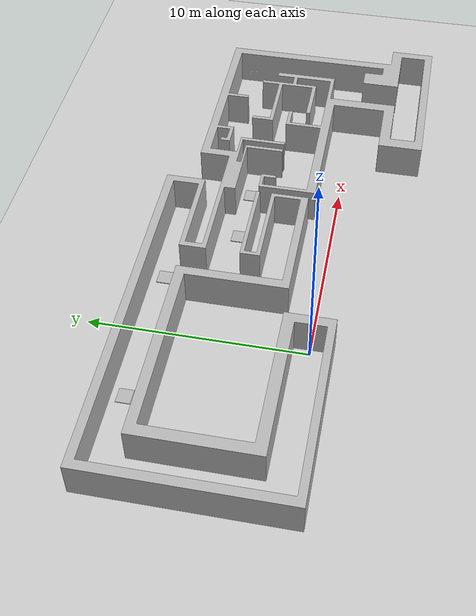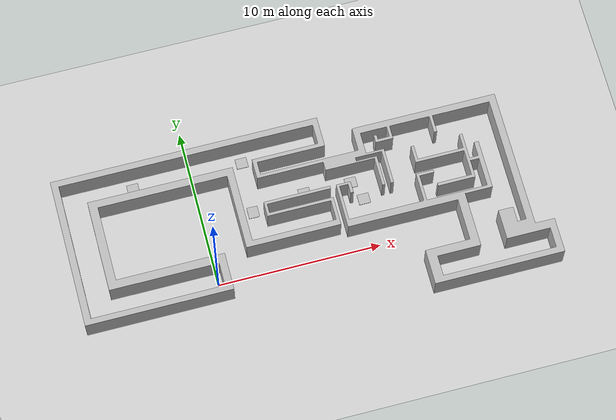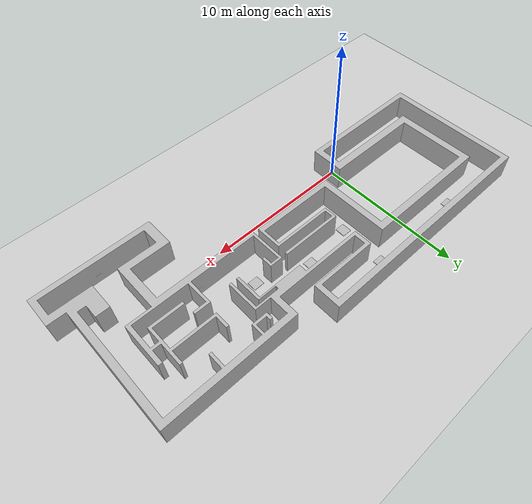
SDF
<sdf version='1.9'>
  <world name='empty'>
    <physics name='1ms' type='ignored'>
      <max_step_size>0.001</max_step_size>
      <real_time_factor>1</real_time_factor>
      <real_time_update_rate>1000</real_time_update_rate>
    </physics>
    <plugin name='gz::sim::systems::Physics' filename='gz-sim-physics-system'/>
    <plugin name='gz::sim::systems::UserCommands' filename='gz-sim-user-commands-system'/>
    <plugin name='gz::sim::systems::SceneBroadcaster' filename='gz-sim-scene-broadcaster-system'/>
    <plugin name='gz::sim::systems::Sensors' filename='gz-sim-sensors-system'>
      <render_engine>ogre2</render_engine>
    </plugin>
    <plugin name='gz::sim::systems::Contact' filename='gz-sim-contact-system'/>
    <plugin name='gz::sim::systems::Imu' filename='gz-sim-imu-system'/>
    <gravity>0 0 -9.8</gravity>
    <magnetic_field>6e-06 2.3e-05 -4.2e-05</magnetic_field>
    <atmosphere type='adiabatic'/>
    <scene>
      <ambient>0.4 0.4 0.4 1</ambient>
      <background>0.7 0.7 0.7 1</background>
      <shadows>true</shadows>
    </scene>
    <model name='ground_plane'>
      <static>true</static>
      <link name='link'>
        <collision name='collision'>
          <geometry>
            <plane>
              <normal>0 0 1</normal>
              <size>100 100</size>
            </plane>
          </geometry>
          <surface>
            <friction>
              <ode/>
            </friction>
            <bounce/>
            <contact/>
          </surface>
        </collision>
        <visual name='visual'>
          <geometry>
            <plane>
              <normal>0 0 1</normal>
              <size>100 100</size>
            </plane>
          </geometry>
          <material>
            <ambient>0.8 0.8 0.8 1</ambient>
            <diffuse>0.8 0.8 0.8 1</diffuse>
            <specular>0.8 0.8 0.8 1</specular>
          </material>
        </visual>
        <pose>0 0 0 0 -0 0</pose>
        <inertial>
          <pose>0 0 0 0 -0 0</pose>
          <mass>1</mass>
          <inertia>
            <ixx>1</ixx>
            <ixy>0</ixy>
            <ixz>0</ixz>
            <iyy>1</iyy>
            <iyz>0</iyz>
            <izz>1</izz>
          </inertia>
        </inertial>
        <enable_wind>false</enable_wind>
      </link>
      <pose>0 0 0 0 -0 0</pose>
      <self_collide>false</self_collide>
    </model>
    <model name='forward'>
      <link name='link'>
        <visual name='visual'>
          <geometry>
            <mesh>
              <uri>model://mini_r1_v1_description/meshes/forward.obj</uri>
              <scale>0.1 0.1 1</scale>
            </mesh>
          </geometry>
        </visual>
        <collision name='collision'>
          <geometry>
            <mesh>
              <uri>model://mini_r1_v1_description/meshes/forward.obj</uri>
              <scale>0.1 0.1 1</scale>
            </mesh>
          </geometry>
        </collision>
        <pose>0 0 0 0 -0 0</pose>
        <inertial>
          <pose>0 0 0 0 -0 0</pose>
          <mass>1</mass>
          <inertia>
            <ixx>1</ixx>
            <ixy>0</ixy>
            <ixz>0</ixz>
            <iyy>1</iyy>
            <iyz>0</iyz>
            <izz>1</izz>
          </inertia>
        </inertial>
        <enable_wind>false</enable_wind>
      </link>
      <pose>-3.90046 7.61072 -0.056645 0 0.006011 0</pose>
      <static>true</static>
      <self_collide>false</self_collide>
    </model>
    <model name='right'>
      <link name='link'>
        <visual name='visual'>
          <geometry>
            <mesh>
              <uri>model://mini_r1_v1_description/meshes/right.obj</uri>
              <scale>0.1 0.1 1</scale>
            </mesh>
          </geometry>
        </visual>
        <collision name='collision'>
          <geometry>
            <mesh>
              <uri>model://mini_r1_v1_description/meshes/right.obj</uri>
              <scale>0.1 0.1 1</scale>
            </mesh>
          </geometry>
        </collision>
        <pose>0 0 0 0 -0 0</pose>
        <inertial>
          <pose>0 0 0 0 -0 0</pose>
          <mass>1</mass>
          <inertia>
            <ixx>1</ixx>
            <ixy>0</ixy>
            <ixz>0</ixz>
            <iyy>1</iyy>
            <iyz>0</iyz>
            <izz>1</izz>
          </inertia>
        </inertial>
        <enable_wind>false</enable_wind>
      </link>
      <pose>2.86857 7.58829 -0.051139 0 -0 0</pose>
      <static>true</static>
      <self_collide>false</self_collide>
    </model>
    <model name='left'>
      <link name='link'>
        <visual name='visual'>
          <geometry>
            <mesh>
              <uri>model://mini_r1_v1_description/meshes/left.obj</uri>
              <scale>0.1 0.1 1</scale>
            </mesh>
          </geometry>
        </visual>
        <collision name='collision'>
          <geometry>
            <mesh>
              <uri>model://mini_r1_v1_description/meshes/left.obj</uri>
              <scale>0.1 0.1 1</scale>
            </mesh>
          </geometry>
        </collision>
        <pose>0 0 0 0 -0 0</pose>
        <inertial>
          <pose>0 0 0 0 -0 0</pose>
          <mass>1</mass>
          <inertia>
            <ixx>1</ixx>
            <ixy>0</ixy>
            <ixz>0</ixz>
            <iyy>1</iyy>
            <iyz>0</iyz>
            <izz>1</izz>
          </inertia>
        </inertial>
        <enable_wind>false</enable_wind>
      </link>
      <pose>3.44482 4.35167 -0.053435 0 0 -1.57943</pose>
      <static>true</static>
      <self_collide>false</self_collide>
    </model>
    <model name='rotate'>
      <link name='link'>
        <visual name='visual'>
          <geometry>
            <mesh>
              <uri>model://mini_r1_v1_description/meshes/rotate.obj</uri>
              <scale>0.1 0.1 1</scale>
            </mesh>
          </geometry>
        </visual>
        <collision name='collision'>
          <geometry>
            <mesh>
              <uri>model://mini_r1_v1_description/meshes/rotate.obj</uri>
              <scale>0.1 0.1 1</scale>
            </mesh>
          </geometry>
        </collision>
        <pose>0 0 0 0 -0 0</pose>
        <inertial>
          <pose>0 0 0 0 -0 0</pose>
          <mass>1</mass>
          <inertia>
            <ixx>1</ixx>
            <ixy>0</ixy>
            <ixz>0</ixz>
            <iyy>1</iyy>
            <iyz>0</iyz>
            <izz>1</izz>
          </inertia>
        </inertial>
        <enable_wind>false</enable_wind>
      </link>
      <pose>6.06886 4.7343 -0.053954 0 0 -0.000786</pose>
      <static>true</static>
      <self_collide>false</self_collide>
    </model>
    <model name='stop'>
      <link name='link'>
        <visual name='visual'>
          <geometry>
            <mesh>
              <uri>model://mini_r1_v1_description/meshes/stop.obj</uri>
              <scale>0.1 0.1 1</scale>
            </mesh>
          </geometry>
        </visual>
        <collision name='collision'>
          <geometry>
            <mesh>
              <uri>model://mini_r1_v1_description/meshes/stop.obj</uri>
              <scale>0.1 0.1 1</scale>
            </mesh>
          </geometry>
        </collision>
        <pose>0 0 0 0 -0 0</pose>
        <inertial>
          <pose>0 0 0 0 -0 0</pose>
          <mass>1</mass>
          <inertia>
            <ixx>1</ixx>
            <ixy>0</ixy>
            <ixz>0</ixz>
            <iyy>1</iyy>
            <iyz>0</iyz>
            <izz>1</izz>
          </inertia>
        </inertial>
        <enable_wind>false</enable_wind>
      </link>
      <pose>9.44795 3.46719 -0.053825 0 -0 0</pose>
      <static>true</static>
      <self_collide>false</self_collide>
    </model>
    <model name='goal'>
      <link name='link'>
        <visual name='visual'>
          <geometry>
            <mesh>
              <uri>model://mini_r1_v1_description/meshes/goal.obj</uri>
              <scale>0.1 0.1 1</scale>
            </mesh>
          </geometry>
        </visual>
        <collision name='collision'>
          <geometry>
            <mesh>
              <uri>model://mini_r1_v1_description/meshes/goal.obj</uri>
              <scale>0.1 0.1 1</scale>
            </mesh>
          </geometry>
        </collision>
        <pose>0 0 0 0 -0 0</pose>
        <inertial>
          <pose>0 0 0 0 -0 0</pose>
          <mass>1</mass>
          <inertia>
            <ixx>1</ixx>
            <ixy>0</ixy>
            <ixz>0</ixz>
            <iyy>1</iyy>
            <iyz>0</iyz>
            <izz>1</izz>
          </inertia>
        </inertial>
        <enable_wind>false</enable_wind>
      </link>
      <pose>8.96336 4.67876 -0.056458 0 -0 0</pose>
      <static>true</static>
      <self_collide>false</self_collide>
    </model>
    <model name='finales'>
      <link name='link'>
        <visual name='visual'>
          <geometry>
            <mesh>
              <uri>model://mini_r1_v1_description/meshes/finales.obj</uri>
            </mesh>
          </geometry>
        </visual>
        <collision name='collision'>
          <geometry>
            <mesh>
              <uri>model://mini_r1_v1_description/meshes/finales.obj</uri>
            </mesh>
          </geometry>
        </collision>
        <pose>0 0 0 0 -0 0</pose>
        <inertial>
          <pose>0 0 0 0 -0 0</pose>
          <mass>1</mass>
          <inertia>
            <ixx>1</ixx>
            <ixy>0</ixy>
            <ixz>0</ixz>
            <iyy>1</iyy>
            <iyz>0</iyz>
            <izz>1</izz>
          </inertia>
        </inertial>
        <enable_wind>false</enable_wind>
      </link>
      <pose>5.14971 1.21778 -1e-06 -0 0 0.000391</pose>
      <static>true</static>
      <self_collide>false</self_collide>
    </model>
    <light name='sun' type='directional'>
      <pose>0 0 10 0 -0 0</pose>
      <cast_shadows>false</cast_shadows>
      <intensity>1</intensity>
      <direction>-0.5 0.1 -0.9</direction>
      <diffuse>0.8 0.8 0.8 1</diffuse>
      <specular>0.2 0.2 0.2 1</specular>
      <attenuation>
        <range>1000</range>
        <linear>0.01</linear>
        <constant>0.90000000000000002</constant>
        <quadratic>0.001</quadratic>
      </attenuation>
      <spot>
        <inner_angle>0</inner_angle>
        <outer_angle>0</outer_angle>
        <falloff>0</falloff>
      </spot>
    </light>
  </world>
</sdf>
